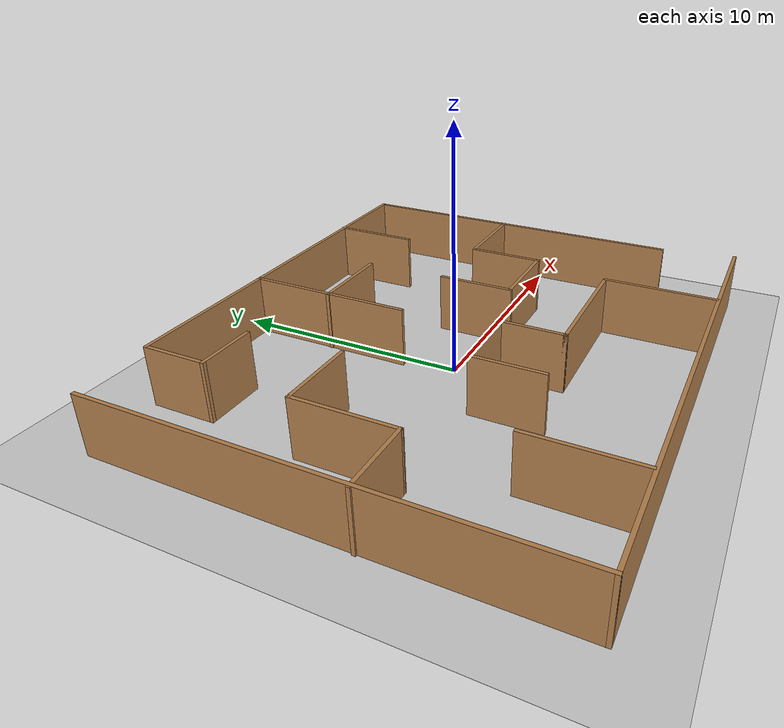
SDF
<sdf version="1.7">
 <world name="default">
  <model name="ground_plane">
   <static>1</static>
   <link name="link">
    <collision name="collision">
     <geometry><plane><normal>0 0 1</normal><size>100 100</size></plane></geometry>
     <surface>
      <contact><collide_bitmask>65535</collide_bitmask></contact>
      <friction><ode><mu>100</mu><mu2>50</mu2></ode></friction>
     </surface>
    </collision>
    <visual name="visual">
     <cast_shadows>0</cast_shadows>
     <geometry><plane><normal>0 0 1</normal><size>100 100</size></plane></geometry>
     <material>
      <script><uri>file://media/materials/scripts/gazebo.material</uri><name>Gazebo/Grey</name></script>
     </material>
    </visual>
   </link>
  </model>
  <light name="sun" type="directional">
   <pose>0 0 10 0 -0 0</pose>
   <diffuse>0.8 0.8 0.8 1</diffuse>
   <specular>0.2 0.2 0.2 1</specular>
   <attenuation>
    <range>1000</range>
    <constant>0.9</constant>
    <linear>0.01</linear>
    <quadratic>0.001</quadratic>
   </attenuation>
   <direction>-0.5 0.1 -0.9</direction>
   <spot><inner_angle>0</inner_angle><outer_angle>0</outer_angle><falloff>0</falloff></spot>
  </light>
  <scene><shadows>0</shadows><ambient>0.4 0.4 0.4 1</ambient><background>0.7 0.7 0.7 1</background></scene>
  <physics type="ode">
   <real_time_update_rate>1000</real_time_update_rate>
   <max_step_size>0.001</max_step_size>
   <real_time_factor>1</real_time_factor>
   <ode>
    <solver>
     <type>quick</type>
     <iters>150</iters>
     <precon_iters>0</precon_iters>
     <sor>1.4</sor>
     <use_dynamic_moi_rescaling>1</use_dynamic_moi_rescaling>
    </solver>
    <constraints>
     <cfm>1e-05</cfm>
     <erp>0.2</erp>
     <contact_max_correcting_vel>2000</contact_max_correcting_vel>
     <contact_surface_layer>0.01</contact_surface_layer>
    </constraints>
   </ode>
  </physics>
  <gravity>0 0 -9.8</gravity>
  <magnetic_field>6e-06 2.3e-05 -4.2e-05</magnetic_field>
  <atmosphere type="adiabatic"/>
  <audio><device>default</device></audio>
  <spherical_coordinates>
   <surface_model>EARTH_WGS84</surface_model>
   <latitude_deg>0</latitude_deg>
   <longitude_deg>0</longitude_deg>
   <elevation>0</elevation>
   <heading_deg>0</heading_deg>
  </spherical_coordinates>
  <model name="maze">
   <pose>0.219017 0.001319 0 0 -0 0</pose>
   <link name="Wall_10">
    <collision name="Wall_10_Collision">
     <geometry><box><size>2.5 0.15 2.5</size></box></geometry>
     <pose>0 0 1.25 0 -0 0</pose>
    </collision>
    <visual name="Wall_10_Visual">
     <pose>0 0 1.25 0 -0 0</pose>
     <geometry><box><size>2.5 0.15 2.5</size></box></geometry>
     <material>
      <script><uri>file://media/materials/scripts/gazebo.material</uri><name>Gazebo/Wood</name></script>
      <ambient>1 1 1 1</ambient>
     </material>
     <meta><layer>0</layer></meta>
    </visual>
    <pose>-5.84317 6.39848 0 0 -0 3.14159</pose>
   </link>
   <link name="Wall_11">
    <collision name="Wall_11_Collision">
     <geometry><box><size>2.75 0.15 2.5</size></box></geometry>
     <pose>0 0 1.25 0 -0 0</pose>
    </collision>
    <visual name="Wall_11_Visual">
     <pose>0 0 1.25 0 -0 0</pose>
     <geometry><box><size>2.75 0.15 2.5</size></box></geometry>
     <material>
      <script><uri>file://media/materials/scripts/gazebo.material</uri><name>Gazebo/Wood</name></script>
      <ambient>1 1 1 1</ambient>
     </material>
     <meta><layer>0</layer></meta>
    </visual>
    <pose>-7.01817 7.69848 0 0 -0 1.5708</pose>
   </link>
   <link name="Wall_12">
    <collision name="Wall_12_Collision">
     <geometry><box><size>17 0.15 2.5</size></box></geometry>
     <pose>0 0 1.25 0 -0 0</pose>
    </collision>
    <visual name="Wall_12_Visual">
     <pose>0 0 1.25 0 -0 0</pose>
     <geometry><box><size>17 0.15 2.5</size></box></geometry>
     <material>
      <script><uri>file://media/materials/scripts/gazebo.material</uri><name>Gazebo/Wood</name></script>
      <ambient>1 1 1 1</ambient>
     </material>
     <meta><layer>0</layer></meta>
    </visual>
    <pose>1.40683 8.99848 0 0 -0 0</pose>
   </link>
   <link name="Wall_13">
    <collision name="Wall_13_Collision">
     <geometry><box><size>15 0.15 2.5</size></box></geometry>
     <pose>0 0 1.25 0 -0 0</pose>
    </collision>
    <visual name="Wall_13_Visual">
     <pose>0 0 1.25 0 -0 0</pose>
     <geometry><box><size>15 0.15 2.5</size></box></geometry>
     <material>
      <script><uri>file://media/materials/scripts/gazebo.material</uri><name>Gazebo/Wood</name></script>
      <ambient>1 1 1 1</ambient>
     </material>
     <meta><layer>0</layer></meta>
    </visual>
    <pose>9.83183 1.57348 0 0 -0 -1.5708</pose>
   </link>
   <link name="Wall_15">
    <collision name="Wall_15_Collision">
     <geometry><box><size>3 0.15 2.5</size></box></geometry>
     <pose>0 0 1.25 0 -0 0</pose>
    </collision>
    <visual name="Wall_15_Visual">
     <pose>0 0 1.25 0 -0 0</pose>
     <geometry><box><size>3 0.15 2.5</size></box></geometry>
     <material>
      <script><uri>file://media/materials/scripts/gazebo.material</uri><name>Gazebo/Wood</name></script>
      <ambient>1 1 1 1</ambient>
     </material>
     <meta><layer>0</layer></meta>
    </visual>
    <pose>-8.90695 -1.65218 0 0 -0 0</pose>
   </link>
   <link name="Wall_16">
    <collision name="Wall_16_Collision">
     <geometry><box><size>4.25 0.15 2.5</size></box></geometry>
     <pose>0 0 1.25 0 -0 0</pose>
    </collision>
    <visual name="Wall_16_Visual">
     <pose>0 0 1.25 0 -0 0</pose>
     <geometry><box><size>4.25 0.15 2.5</size></box></geometry>
     <material>
      <script><uri>file://media/materials/scripts/gazebo.material</uri><name>Gazebo/Wood</name></script>
      <ambient>1 1 1 1</ambient>
     </material>
     <meta><layer>0</layer></meta>
    </visual>
    <pose>-7.48195 0.39782 0 0 -0 1.5708</pose>
   </link>
   <link name="Wall_17">
    <collision name="Wall_17_Collision">
     <geometry><box><size>3.25 0.15 2.5</size></box></geometry>
     <pose>0 0 1.25 0 -0 0</pose>
    </collision>
    <visual name="Wall_17_Visual">
     <pose>0 0 1.25 0 -0 0</pose>
     <geometry><box><size>3.25 0.15 2.5</size></box></geometry>
     <material>
      <script><uri>file://media/materials/scripts/gazebo.material</uri><name>Gazebo/Wood</name></script>
      <ambient>1 1 1 1</ambient>
     </material>
     <meta><layer>0</layer></meta>
    </visual>
    <pose>-5.93195 2.44782 0 0 -0 0</pose>
   </link>
   <link name="Wall_19">
    <collision name="Wall_19_Collision">
     <geometry><box><size>4.25 0.15 2.5</size></box></geometry>
     <pose>0 0 1.25 0 -0 0</pose>
    </collision>
    <visual name="Wall_19_Visual">
     <pose>0 0 1.25 0 -0 0</pose>
     <geometry><box><size>4.25 0.15 2.5</size></box></geometry>
     <material>
      <script><uri>file://media/materials/scripts/gazebo.material</uri><name>Gazebo/Wood</name></script>
      <ambient>1 1 1 1</ambient>
     </material>
     <meta><layer>0</layer></meta>
    </visual>
    <pose>-6.08412 -6.88418 0 0 -0 1.5708</pose>
   </link>
   <link name="Wall_21">
    <collision name="Wall_21_Collision">
     <geometry><box><size>7 0.15 2.5</size></box></geometry>
     <pose>0 0 1.25 0 -0 0</pose>
    </collision>
    <visual name="Wall_21_Visual">
     <pose>0 0 1.25 0 -0 0</pose>
     <geometry><box><size>7 0.15 2.5</size></box></geometry>
     <material>
      <script><uri>file://media/materials/scripts/gazebo.material</uri><name>Gazebo/Wood</name></script>
      <ambient>1 1 1 1</ambient>
     </material>
     <meta><layer>0</layer></meta>
    </visual>
    <pose>-0.622612 5.56264 0 0 -0 -1.5708</pose>
   </link>
   <link name="Wall_23">
    <collision name="Wall_23_Collision">
     <geometry><box><size>3.5 0.15 2.5</size></box></geometry>
     <pose>0 0 1.25 0 -0 0</pose>
    </collision>
    <visual name="Wall_23_Visual">
     <pose>0 0 1.25 0 -0 0</pose>
     <geometry><box><size>3.5 0.15 2.5</size></box></geometry>
     <material>
      <script><uri>file://media/materials/scripts/gazebo.material</uri><name>Gazebo/Wood</name></script>
      <ambient>1 1 1 1</ambient>
     </material>
     <meta><layer>0</layer></meta>
    </visual>
    <pose>1.01193 5.50846 0 0 -0 0</pose>
   </link>
   <link name="Wall_25">
    <collision name="Wall_25_Collision">
     <geometry><box><size>3.75 0.15 2.5</size></box></geometry>
     <pose>0 0 1.25 0 -0 0</pose>
    </collision>
    <visual name="Wall_25_Visual">
     <pose>0 0 1.25 0 -0 0</pose>
     <geometry><box><size>3.75 0.15 2.5</size></box></geometry>
     <material>
      <script><uri>file://media/materials/scripts/gazebo.material</uri><name>Gazebo/Wood</name></script>
      <ambient>1 1 1 1</ambient>
     </material>
     <meta><layer>0</layer></meta>
    </visual>
    <pose>5.97165 7.22809 0 0 -0 -1.5708</pose>
   </link>
   <link name="Wall_27">
    <collision name="Wall_27_Collision">
     <geometry><box><size>3.25 0.15 2.5</size></box></geometry>
     <pose>0 0 1.25 0 -0 0</pose>
    </collision>
    <visual name="Wall_27_Visual">
     <pose>0 0 1.25 0 -0 0</pose>
     <geometry><box><size>3.25 0.15 2.5</size></box></geometry>
     <material>
      <script><uri>file://media/materials/scripts/gazebo.material</uri><name>Gazebo/Wood</name></script>
      <ambient>1 1 1 1</ambient>
     </material>
     <meta><layer>0</layer></meta>
    </visual>
    <pose>2.85657 0.479277 0 0 -0 -1.5708</pose>
   </link>
   <link name="Wall_28">
    <collision name="Wall_28_Collision">
     <geometry><box><size>3.5 0.15 2.5</size></box></geometry>
     <pose>0 0 1.25 0 -0 0</pose>
    </collision>
    <visual name="Wall_28_Visual">
     <pose>0 0 1.25 0 -0 0</pose>
     <geometry><box><size>3.5 0.15 2.5</size></box></geometry>
     <material>
      <script><uri>file://media/materials/scripts/gazebo.material</uri><name>Gazebo/Wood</name></script>
      <ambient>1 1 1 1</ambient>
     </material>
     <meta><layer>0</layer></meta>
    </visual>
    <pose>4.53157 -1.07072 0 0 -0 0</pose>
   </link>
   <link name="Wall_29">
    <collision name="Wall_29_Collision">
     <geometry><box><size>3.25 0.15 2.5</size></box></geometry>
     <pose>0 0 1.25 0 -0 0</pose>
    </collision>
    <visual name="Wall_29_Visual">
     <pose>0 0 1.25 0 -0 0</pose>
     <geometry><box><size>3.25 0.15 2.5</size></box></geometry>
     <material>
      <script><uri>file://media/materials/scripts/gazebo.material</uri><name>Gazebo/Wood</name></script>
      <ambient>1 1 1 1</ambient>
     </material>
     <meta><layer>0</layer></meta>
    </visual>
    <pose>6.20657 0.479277 0 0 -0 1.5708</pose>
   </link>
   <link name="Wall_30">
    <collision name="Wall_30_Collision">
     <geometry><box><size>3.75 0.15 2.5</size></box></geometry>
     <pose>0 0 1.25 0 -0 0</pose>
    </collision>
    <visual name="Wall_30_Visual">
     <pose>0 0 1.25 0 -0 0</pose>
     <geometry><box><size>3.75 0.15 2.5</size></box></geometry>
     <material>
      <script><uri>file://media/materials/scripts/gazebo.material</uri><name>Gazebo/Wood</name></script>
      <ambient>1 1 1 1</ambient>
     </material>
     <meta><layer>0</layer></meta>
    </visual>
    <pose>8.00657 2.02928 0 0 -0 0</pose>
   </link>
   <link name="Wall_32">
    <collision name="Wall_32_Collision">
     <geometry><box><size>3 0.15 2.5</size></box></geometry>
     <pose>0 0 1.25 0 -0 0</pose>
    </collision>
    <visual name="Wall_32_Visual">
     <pose>0 0 1.25 0 -0 0</pose>
     <geometry><box><size>3 0.15 2.5</size></box></geometry>
     <material>
      <script><uri>file://media/materials/scripts/gazebo.material</uri><name>Gazebo/Wood</name></script>
      <ambient>1 1 1 1</ambient>
     </material>
     <meta><layer>0</layer></meta>
    </visual>
    <pose>-2.68585 -3.18044 0 0 -0 1.5708</pose>
   </link>
   <link name="Wall_33">
    <collision name="Wall_33_Collision">
     <geometry><box><size>3 0.15 2.5</size></box></geometry>
     <pose>0 0 1.25 0 -0 0</pose>
    </collision>
    <visual name="Wall_33_Visual">
     <pose>0 0 1.25 0 -0 0</pose>
     <geometry><box><size>3 0.15 2.5</size></box></geometry>
     <material>
      <script><uri>file://media/materials/scripts/gazebo.material</uri><name>Gazebo/Wood</name></script>
      <ambient>1 1 1 1</ambient>
     </material>
     <meta><layer>0</layer></meta>
    </visual>
    <pose>-1.26085 -1.75544 0 0 -0 0</pose>
   </link>
   <link name="Wall_34">
    <collision name="Wall_34_Collision">
     <geometry><box><size>2.75 0.15 2.5</size></box></geometry>
     <pose>0 0 1.25 0 -0 0</pose>
    </collision>
    <visual name="Wall_34_Visual">
     <pose>0 0 1.25 0 -0 0</pose>
     <geometry><box><size>2.75 0.15 2.5</size></box></geometry>
     <material>
      <script><uri>file://media/materials/scripts/gazebo.material</uri><name>Gazebo/Wood</name></script>
      <ambient>1 1 1 1</ambient>
     </material>
     <meta><layer>0</layer></meta>
    </visual>
    <pose>0.164153 -3.05544 0 0 -0 -1.5708</pose>
   </link>
   <link name="Wall_35">
    <collision name="Wall_35_Collision">
     <geometry><box><size>5.5 0.15 2.5</size></box></geometry>
     <pose>0 0 1.25 0 -0 0</pose>
    </collision>
    <visual name="Wall_35_Visual">
     <pose>0 0 1.25 0 -0 0</pose>
     <geometry><box><size>5.5 0.15 2.5</size></box></geometry>
     <material>
      <script><uri>file://media/materials/scripts/gazebo.material</uri><name>Gazebo/Wood</name></script>
      <ambient>1 1 1 1</ambient>
     </material>
     <meta><layer>0</layer></meta>
    </visual>
    <pose>2.83915 -4.35544 0 0 -0 0</pose>
   </link>
   <link name="Wall_36">
    <collision name="Wall_36_Collision">
     <geometry><box><size>4.75 0.15 2.5</size></box></geometry>
     <pose>0 0 1.25 0 -0 0</pose>
    </collision>
    <visual name="Wall_36_Visual">
     <pose>0 0 1.25 0 -0 0</pose>
     <geometry><box><size>4.75 0.15 2.5</size></box></geometry>
     <material>
      <script><uri>file://media/materials/scripts/gazebo.material</uri><name>Gazebo/Wood</name></script>
      <ambient>1 1 1 1</ambient>
     </material>
     <meta><layer>0</layer></meta>
    </visual>
    <pose>5.51415 -6.65544 0 0 -0 -1.5708</pose>
   </link>
   <link name="Wall_7">
    <collision name="Wall_7_Collision">
     <geometry><box><size>18 0.15 2.5</size></box></geometry>
     <pose>0 0 1.25 0 -0 0</pose>
    </collision>
    <visual name="Wall_7_Visual">
     <pose>0 0 1.25 0 -0 0</pose>
     <geometry><box><size>18 0.15 2.5</size></box></geometry>
     <material>
      <script><uri>file://media/materials/scripts/gazebo.material</uri><name>Gazebo/Wood</name></script>
      <ambient>1 1 1 1</ambient>
     </material>
     <meta><layer>0</layer></meta>
    </visual>
    <pose>-10.268 -0.103091 0 0 -0 -1.5708</pose>
   </link>
   <link name="Wall_8">
    <collision name="Wall_8_Collision">
     <geometry><box><size>20.75 0.15 2.5</size></box></geometry>
     <pose>0 0 1.25 0 -0 0</pose>
    </collision>
    <visual name="Wall_8_Visual">
     <pose>0 0 1.25 0 -0 0</pose>
     <geometry><box><size>20.75 0.15 2.5</size></box></geometry>
     <material>
      <script><uri>file://media/materials/scripts/gazebo.material</uri><name>Gazebo/Wood</name></script>
      <ambient>1 1 1 1</ambient>
     </material>
     <meta><layer>0</layer></meta>
    </visual>
    <pose>0.031951 -9.02809 0 0 -0 0</pose>
   </link>
   <static>1</static>
  </model>
 </world>
</sdf>
